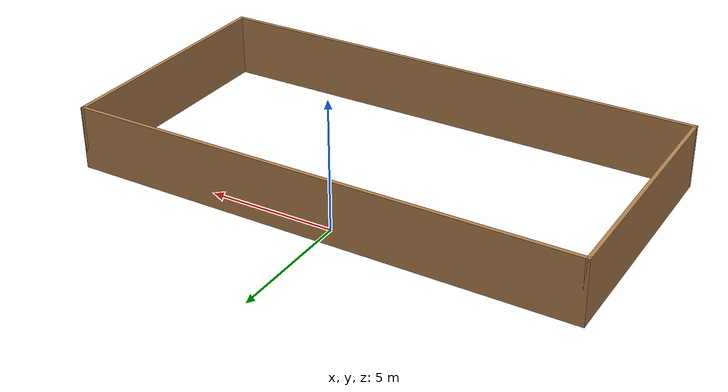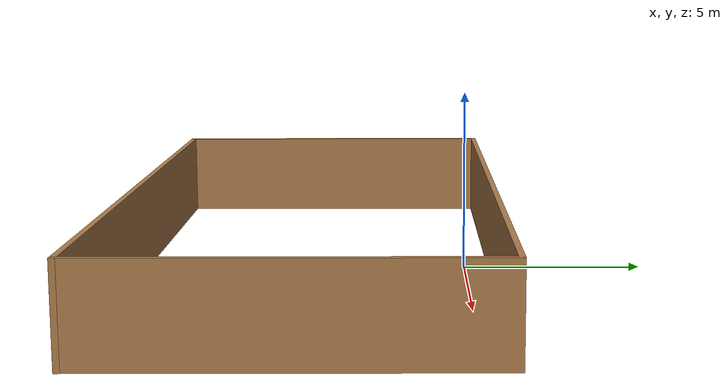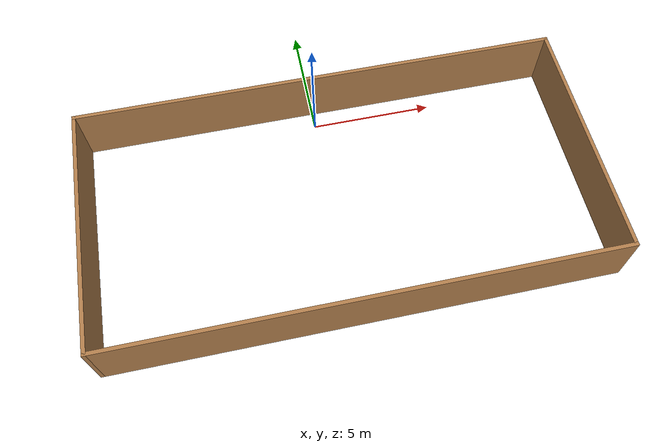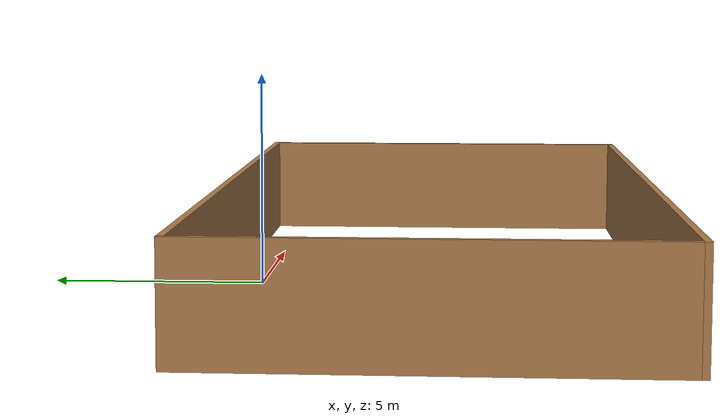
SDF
<?xml version='1.0'?>
<sdf version='1.6'>
  <model name='box_world'>
    <pose frame=''>0.286906 -4.17462 0 0 -0 0</pose>
    <link name='Wall_2'>
      <collision name='Wall_2_Collision'>
        <geometry>
          <box>
            <size>10 0.15 2.5</size>
          </box>
        </geometry>
        <pose frame=''>0 0 1.25 0 -0 0</pose>
      </collision>
      <visual name='Wall_2_Visual'>
        <pose frame=''>0 0 1.25 0 -0 0</pose>
        <geometry>
          <box>
            <size>10 0.15 2.5</size>
          </box>
        </geometry>
        <material>
          <script>
            <uri>file://media/materials/scripts/gazebo.material</uri>
            <name>Gazebo/Wood</name>
          </script>
          <ambient>1 1 1 1</ambient>
        </material>
        <meta>
          <layer>0</layer>
        </meta>
      </visual>
      <pose frame=''>-9.925 0 0 0 -0 1.5708</pose>
    </link>
    <link name='Wall_3'>
      <collision name='Wall_3_Collision'>
        <geometry>
          <box>
            <size>20 0.15 2.5</size>
          </box>
        </geometry>
        <pose frame=''>0 0 1.25 0 -0 0</pose>
      </collision>
      <visual name='Wall_3_Visual'>
        <pose frame=''>0 0 1.25 0 -0 0</pose>
        <geometry>
          <box>
            <size>20 0.15 2.5</size>
          </box>
        </geometry>
        <material>
          <script>
            <uri>file://media/materials/scripts/gazebo.material</uri>
            <name>Gazebo/Wood</name>
          </script>
          <ambient>1 1 1 1</ambient>
        </material>
        <meta>
          <layer>0</layer>
        </meta>
      </visual>
      <pose frame=''>0 4.925 0 0 -0 0</pose>
    </link>
    <link name='Wall_4'>
      <collision name='Wall_4_Collision'>
        <geometry>
          <box>
            <size>10 0.15 2.5</size>
          </box>
        </geometry>
        <pose frame=''>0 0 1.25 0 -0 0</pose>
      </collision>
      <visual name='Wall_4_Visual'>
        <pose frame=''>0 0 1.25 0 -0 0</pose>
        <geometry>
          <box>
            <size>10 0.15 2.5</size>
          </box>
        </geometry>
        <material>
          <script>
            <uri>file://media/materials/scripts/gazebo.material</uri>
            <name>Gazebo/Wood</name>
          </script>
          <ambient>1 1 1 1</ambient>
        </material>
        <meta>
          <layer>0</layer>
        </meta>
      </visual>
      <pose frame=''>9.925 0 0 0 -0 -1.5708</pose>
    </link>
    <link name='Wall_5'>
      <collision name='Wall_5_Collision'>
        <geometry>
          <box>
            <size>20 0.15 2.5</size>
          </box>
        </geometry>
        <pose frame=''>0 0 1.25 0 -0 0</pose>
      </collision>
      <visual name='Wall_5_Visual'>
        <pose frame=''>0 0 1.25 0 -0 0</pose>
        <geometry>
          <box>
            <size>20 0.15 2.5</size>
          </box>
        </geometry>
        <material>
          <script>
            <uri>file://media/materials/scripts/gazebo.material</uri>
            <name>Gazebo/Wood</name>
          </script>
          <ambient>1 1 1 1</ambient>
        </material>
        <meta>
          <layer>0</layer>
        </meta>
      </visual>
      <pose frame=''>0 -4.925 0 0 -0 3.14159</pose>
    </link>
    <static>1</static>
  </model>
</sdf>
